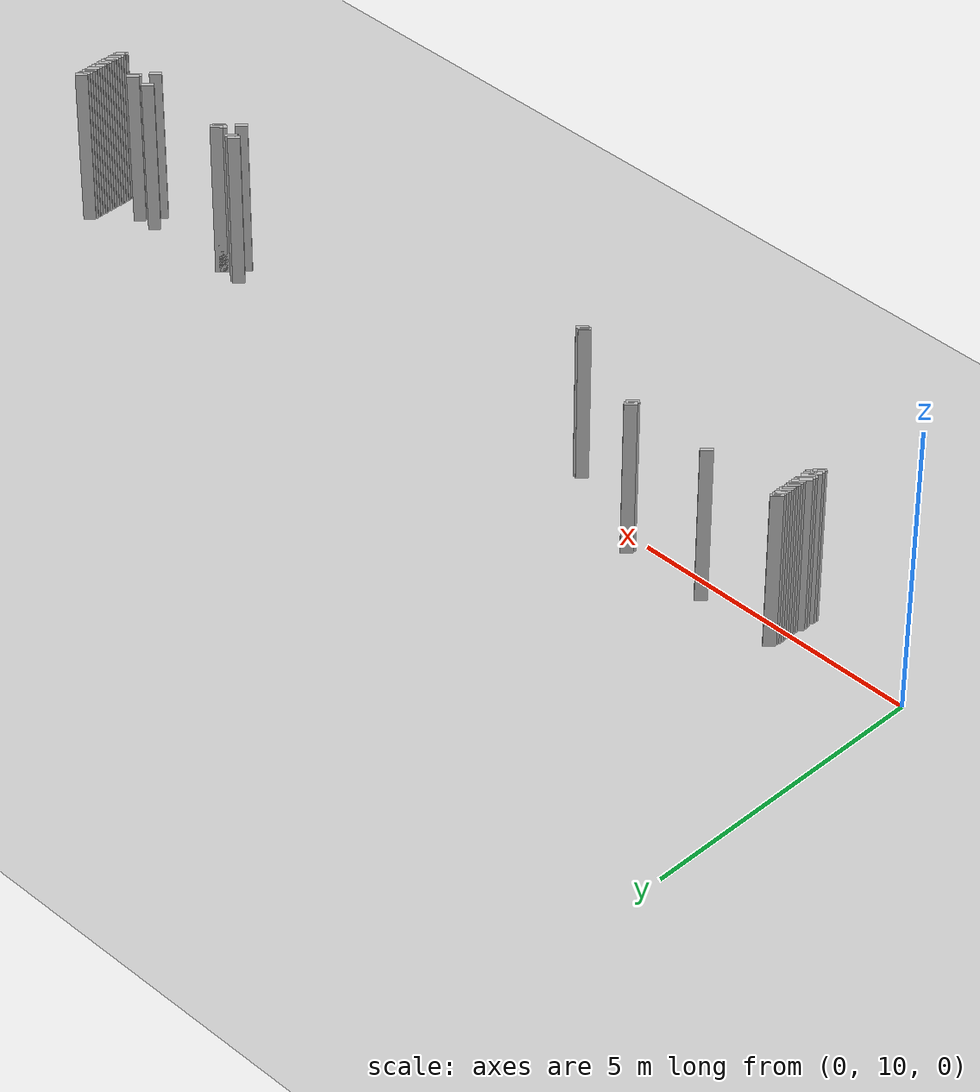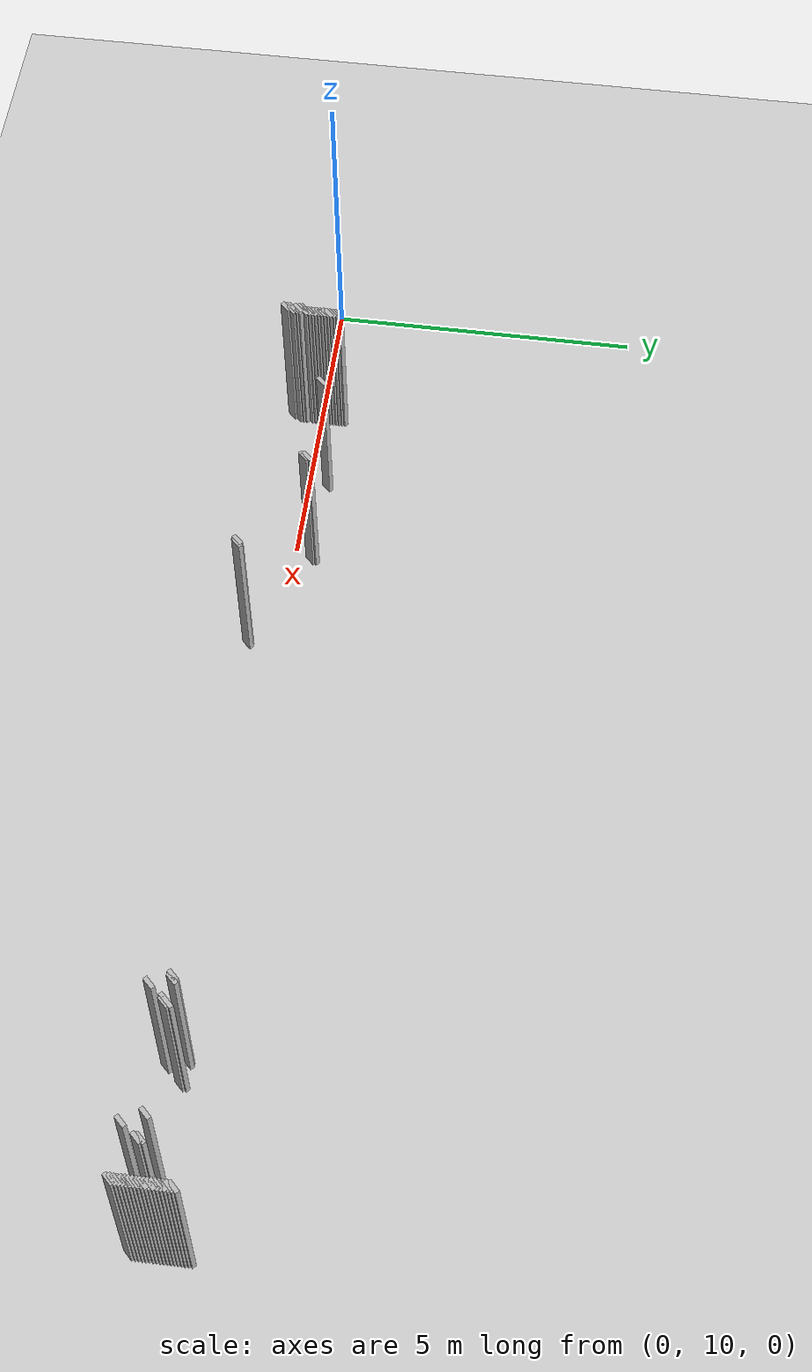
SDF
<sdf version="1.5">
 <world name="default">
  <include><uri>model://ground_plane</uri></include>
  <include><uri>model://sun</uri></include>
  <model name="grey_wall_1638">
   <static>1</static>
   <link name="link">
    <pose>17.05 10.4  1.4 0 0 -0.7853981633974838</pose>
    <collision name="collision">
     <geometry><box><size>0.07071067811865325 .2  2.8</size></box></geometry>
    </collision>
    <visual name="visual">
     <cast_shadows>0</cast_shadows>
     <geometry><box><size>0.07071067811865325 .2  2.8</size></box></geometry>
    </visual>
   </link>
  </model>
  <model name="grey_wall_1639">
   <static>1</static>
   <link name="link">
    <pose>2.25 10.350000000000001  1.4 0 0 -0.7853981633974572</pose>
    <collision name="collision">
     <geometry><box><size>0.07071067811865513 .2  2.8</size></box></geometry>
    </collision>
    <visual name="visual">
     <cast_shadows>0</cast_shadows>
     <geometry><box><size>0.07071067811865513 .2  2.8</size></box></geometry>
    </visual>
   </link>
  </model>
  <model name="grey_wall_1640">
   <static>1</static>
   <link name="link">
    <pose>17.05 10.350000000000001  1.4 0 0 -0.7853981633974838</pose>
    <collision name="collision">
     <geometry><box><size>0.07071067811865325 .2  2.8</size></box></geometry>
    </collision>
    <visual name="visual">
     <cast_shadows>0</cast_shadows>
     <geometry><box><size>0.07071067811865325 .2  2.8</size></box></geometry>
    </visual>
   </link>
  </model>
  <model name="grey_wall_1641">
   <static>1</static>
   <link name="link">
    <pose>2.25 10.3  1.4 0 0 -0.7853981633974572</pose>
    <collision name="collision">
     <geometry><box><size>0.07071067811865513 .2  2.8</size></box></geometry>
    </collision>
    <visual name="visual">
     <cast_shadows>0</cast_shadows>
     <geometry><box><size>0.07071067811865513 .2  2.8</size></box></geometry>
    </visual>
   </link>
  </model>
  <model name="grey_wall_1642">
   <static>1</static>
   <link name="link">
    <pose>3.6500000000000004 10.3  1.4 0 0 -0.7853981633974572</pose>
    <collision name="collision">
     <geometry><box><size>0.07071067811865513 .2  2.8</size></box></geometry>
    </collision>
    <visual name="visual">
     <cast_shadows>0</cast_shadows>
     <geometry><box><size>0.07071067811865513 .2  2.8</size></box></geometry>
    </visual>
   </link>
  </model>
  <model name="grey_wall_1643">
   <static>1</static>
   <link name="link">
    <pose>5.15 10.3  1.4 0 0 -0.7853981633974483</pose>
    <collision name="collision">
     <geometry><box><size>0.07071067811865576 .2  2.8</size></box></geometry>
    </collision>
    <visual name="visual">
     <cast_shadows>0</cast_shadows>
     <geometry><box><size>0.07071067811865576 .2  2.8</size></box></geometry>
    </visual>
   </link>
  </model>
  <model name="grey_wall_1644">
   <static>1</static>
   <link name="link">
    <pose>17.05 10.3  1.4 0 0 -0.7853981633974838</pose>
    <collision name="collision">
     <geometry><box><size>0.07071067811865325 .2  2.8</size></box></geometry>
    </collision>
    <visual name="visual">
     <cast_shadows>0</cast_shadows>
     <geometry><box><size>0.07071067811865325 .2  2.8</size></box></geometry>
    </visual>
   </link>
  </model>
  <model name="grey_wall_1645">
   <static>1</static>
   <link name="link">
    <pose>2.25 10.25  1.4 0 0 -0.7853981633974572</pose>
    <collision name="collision">
     <geometry><box><size>0.07071067811865513 .2  2.8</size></box></geometry>
    </collision>
    <visual name="visual">
     <cast_shadows>0</cast_shadows>
     <geometry><box><size>0.07071067811865513 .2  2.8</size></box></geometry>
    </visual>
   </link>
  </model>
  <model name="grey_wall_1646">
   <static>1</static>
   <link name="link">
    <pose>5.15 10.25  1.4 0 0 -0.7853981633974483</pose>
    <collision name="collision">
     <geometry><box><size>0.07071067811865576 .2  2.8</size></box></geometry>
    </collision>
    <visual name="visual">
     <cast_shadows>0</cast_shadows>
     <geometry><box><size>0.07071067811865576 .2  2.8</size></box></geometry>
    </visual>
   </link>
  </model>
  <model name="grey_wall_1647">
   <static>1</static>
   <link name="link">
    <pose>17.05 10.25  1.4 0 0 -0.7853981633974838</pose>
    <collision name="collision">
     <geometry><box><size>0.07071067811865325 .2  2.8</size></box></geometry>
    </collision>
    <visual name="visual">
     <cast_shadows>0</cast_shadows>
     <geometry><box><size>0.07071067811865325 .2  2.8</size></box></geometry>
    </visual>
   </link>
  </model>
  <model name="grey_wall_1648">
   <static>1</static>
   <link name="link">
    <pose>2.25 10.200000000000001  1.4 0 0 -0.7853981633974572</pose>
    <collision name="collision">
     <geometry><box><size>0.07071067811865513 .2  2.8</size></box></geometry>
    </collision>
    <visual name="visual">
     <cast_shadows>0</cast_shadows>
     <geometry><box><size>0.07071067811865513 .2  2.8</size></box></geometry>
    </visual>
   </link>
  </model>
  <model name="grey_wall_1649">
   <static>1</static>
   <link name="link">
    <pose>17.05 10.200000000000001  1.4 0 0 -0.7853981633974838</pose>
    <collision name="collision">
     <geometry><box><size>0.07071067811865325 .2  2.8</size></box></geometry>
    </collision>
    <visual name="visual">
     <cast_shadows>0</cast_shadows>
     <geometry><box><size>0.07071067811865325 .2  2.8</size></box></geometry>
    </visual>
   </link>
  </model>
  <model name="grey_wall_1650">
   <static>1</static>
   <link name="link">
    <pose>2.25 10.15  1.4 0 0 -0.7853981633974572</pose>
    <collision name="collision">
     <geometry><box><size>0.07071067811865513 .2  2.8</size></box></geometry>
    </collision>
    <visual name="visual">
     <cast_shadows>0</cast_shadows>
     <geometry><box><size>0.07071067811865513 .2  2.8</size></box></geometry>
    </visual>
   </link>
  </model>
  <model name="grey_wall_1651">
   <static>1</static>
   <link name="link">
    <pose>17.05 10.15  1.4 0 0 -0.7853981633974838</pose>
    <collision name="collision">
     <geometry><box><size>0.07071067811865325 .2  2.8</size></box></geometry>
    </collision>
    <visual name="visual">
     <cast_shadows>0</cast_shadows>
     <geometry><box><size>0.07071067811865325 .2  2.8</size></box></geometry>
    </visual>
   </link>
  </model>
  <model name="grey_wall_1652">
   <static>1</static>
   <link name="link">
    <pose>2.25 10.100000000000001  1.4 0 0 -0.7853981633974572</pose>
    <collision name="collision">
     <geometry><box><size>0.07071067811865513 .2  2.8</size></box></geometry>
    </collision>
    <visual name="visual">
     <cast_shadows>0</cast_shadows>
     <geometry><box><size>0.07071067811865513 .2  2.8</size></box></geometry>
    </visual>
   </link>
  </model>
  <model name="grey_wall_1653">
   <static>1</static>
   <link name="link">
    <pose>17.05 10.100000000000001  1.4 0 0 -0.7853981633974838</pose>
    <collision name="collision">
     <geometry><box><size>0.07071067811865325 .2  2.8</size></box></geometry>
    </collision>
    <visual name="visual">
     <cast_shadows>0</cast_shadows>
     <geometry><box><size>0.07071067811865325 .2  2.8</size></box></geometry>
    </visual>
   </link>
  </model>
  <model name="grey_wall_1654">
   <static>1</static>
   <link name="link">
    <pose>2.25 10.05  1.4 0 0 -0.7853981633974572</pose>
    <collision name="collision">
     <geometry><box><size>0.07071067811865513 .2  2.8</size></box></geometry>
    </collision>
    <visual name="visual">
     <cast_shadows>0</cast_shadows>
     <geometry><box><size>0.07071067811865513 .2  2.8</size></box></geometry>
    </visual>
   </link>
  </model>
  <model name="grey_wall_1655">
   <static>1</static>
   <link name="link">
    <pose>17.05 10.05  1.4 0 0 -0.7853981633974838</pose>
    <collision name="collision">
     <geometry><box><size>0.07071067811865325 .2  2.8</size></box></geometry>
    </collision>
    <visual name="visual">
     <cast_shadows>0</cast_shadows>
     <geometry><box><size>0.07071067811865325 .2  2.8</size></box></geometry>
    </visual>
   </link>
  </model>
  <model name="grey_wall_1656">
   <static>1</static>
   <link name="link">
    <pose>2.25 10.0  1.4 0 0 -0.7853981633974572</pose>
    <collision name="collision">
     <geometry><box><size>0.07071067811865513 .2  2.8</size></box></geometry>
    </collision>
    <visual name="visual">
     <cast_shadows>0</cast_shadows>
     <geometry><box><size>0.07071067811865513 .2  2.8</size></box></geometry>
    </visual>
   </link>
  </model>
  <model name="grey_wall_1657">
   <static>1</static>
   <link name="link">
    <pose>17.05 10.0  1.4 0 0 -0.7853981633974838</pose>
    <collision name="collision">
     <geometry><box><size>0.07071067811865325 .2  2.8</size></box></geometry>
    </collision>
    <visual name="visual">
     <cast_shadows>0</cast_shadows>
     <geometry><box><size>0.07071067811865325 .2  2.8</size></box></geometry>
    </visual>
   </link>
  </model>
  <model name="grey_wall_1658">
   <static>1</static>
   <link name="link">
    <pose>2.25 9.950000000000001  1.4 0 0 -0.7853981633974572</pose>
    <collision name="collision">
     <geometry><box><size>0.07071067811865513 .2  2.8</size></box></geometry>
    </collision>
    <visual name="visual">
     <cast_shadows>0</cast_shadows>
     <geometry><box><size>0.07071067811865513 .2  2.8</size></box></geometry>
    </visual>
   </link>
  </model>
  <model name="grey_wall_1659">
   <static>1</static>
   <link name="link">
    <pose>17.05 9.950000000000001  1.4 0 0 -0.7853981633974838</pose>
    <collision name="collision">
     <geometry><box><size>0.07071067811865325 .2  2.8</size></box></geometry>
    </collision>
    <visual name="visual">
     <cast_shadows>0</cast_shadows>
     <geometry><box><size>0.07071067811865325 .2  2.8</size></box></geometry>
    </visual>
   </link>
  </model>
  <model name="grey_wall_1660">
   <static>1</static>
   <link name="link">
    <pose>2.25 9.9  1.4 0 0 -0.7853981633974572</pose>
    <collision name="collision">
     <geometry><box><size>0.07071067811865513 .2  2.8</size></box></geometry>
    </collision>
    <visual name="visual">
     <cast_shadows>0</cast_shadows>
     <geometry><box><size>0.07071067811865513 .2  2.8</size></box></geometry>
    </visual>
   </link>
  </model>
  <model name="grey_wall_1661">
   <static>1</static>
   <link name="link">
    <pose>17.05 9.9  1.4 0 0 -0.7853981633974838</pose>
    <collision name="collision">
     <geometry><box><size>0.07071067811865325 .2  2.8</size></box></geometry>
    </collision>
    <visual name="visual">
     <cast_shadows>0</cast_shadows>
     <geometry><box><size>0.07071067811865325 .2  2.8</size></box></geometry>
    </visual>
   </link>
  </model>
  <model name="grey_wall_1662">
   <static>1</static>
   <link name="link">
    <pose>2.25 9.850000000000001  1.4 0 0 -0.7853981633974572</pose>
    <collision name="collision">
     <geometry><box><size>0.07071067811865513 .2  2.8</size></box></geometry>
    </collision>
    <visual name="visual">
     <cast_shadows>0</cast_shadows>
     <geometry><box><size>0.07071067811865513 .2  2.8</size></box></geometry>
    </visual>
   </link>
  </model>
  <model name="grey_wall_1663">
   <static>1</static>
   <link name="link">
    <pose>14.100000000000001 9.850000000000001  1.4 0 0 -0.7853981633974483</pose>
    <collision name="collision">
     <geometry><box><size>0.07071067811865576 .2  2.8</size></box></geometry>
    </collision>
    <visual name="visual">
     <cast_shadows>0</cast_shadows>
     <geometry><box><size>0.07071067811865576 .2  2.8</size></box></geometry>
    </visual>
   </link>
  </model>
  <model name="grey_wall_1664">
   <static>1</static>
   <link name="link">
    <pose>14.15 9.850000000000001  1.4 0 0 -0.7853981633974483</pose>
    <collision name="collision">
     <geometry><box><size>0.07071067811865576 .2  2.8</size></box></geometry>
    </collision>
    <visual name="visual">
     <cast_shadows>0</cast_shadows>
     <geometry><box><size>0.07071067811865576 .2  2.8</size></box></geometry>
    </visual>
   </link>
  </model>
  <model name="grey_wall_1665">
   <static>1</static>
   <link name="link">
    <pose>14.5 9.850000000000001  1.4 0 0 -0.7853981633974483</pose>
    <collision name="collision">
     <geometry><box><size>0.07071067811865576 .2  2.8</size></box></geometry>
    </collision>
    <visual name="visual">
     <cast_shadows>0</cast_shadows>
     <geometry><box><size>0.07071067811865576 .2  2.8</size></box></geometry>
    </visual>
   </link>
  </model>
  <model name="grey_wall_1666">
   <static>1</static>
   <link name="link">
    <pose>16.1 9.850000000000001  1.4 0 0 -0.7853981633974838</pose>
    <collision name="collision">
     <geometry><box><size>0.07071067811865325 .2  2.8</size></box></geometry>
    </collision>
    <visual name="visual">
     <cast_shadows>0</cast_shadows>
     <geometry><box><size>0.07071067811865325 .2  2.8</size></box></geometry>
    </visual>
   </link>
  </model>
  <model name="grey_wall_1667">
   <static>1</static>
   <link name="link">
    <pose>16.45 9.850000000000001  1.4 0 0 -0.7853981633974838</pose>
    <collision name="collision">
     <geometry><box><size>0.07071067811865325 .2  2.8</size></box></geometry>
    </collision>
    <visual name="visual">
     <cast_shadows>0</cast_shadows>
     <geometry><box><size>0.07071067811865325 .2  2.8</size></box></geometry>
    </visual>
   </link>
  </model>
  <model name="grey_wall_1668">
   <static>1</static>
   <link name="link">
    <pose>17.05 9.850000000000001  1.4 0 0 -0.7853981633974838</pose>
    <collision name="collision">
     <geometry><box><size>0.07071067811865325 .2  2.8</size></box></geometry>
    </collision>
    <visual name="visual">
     <cast_shadows>0</cast_shadows>
     <geometry><box><size>0.07071067811865325 .2  2.8</size></box></geometry>
    </visual>
   </link>
  </model>
  <model name="grey_wall_1669">
   <static>1</static>
   <link name="link">
    <pose>2.2 9.8  1.4 0 0 -0.7853981633974572</pose>
    <collision name="collision">
     <geometry><box><size>0.07071067811865513 .2  2.8</size></box></geometry>
    </collision>
    <visual name="visual">
     <cast_shadows>0</cast_shadows>
     <geometry><box><size>0.07071067811865513 .2  2.8</size></box></geometry>
    </visual>
   </link>
  </model>
  <model name="grey_wall_1670">
   <static>1</static>
   <link name="link">
    <pose>2.25 9.8  1.4 0 0 -0.7853981633974572</pose>
    <collision name="collision">
     <geometry><box><size>0.07071067811865513 .2  2.8</size></box></geometry>
    </collision>
    <visual name="visual">
     <cast_shadows>0</cast_shadows>
     <geometry><box><size>0.07071067811865513 .2  2.8</size></box></geometry>
    </visual>
   </link>
  </model>
  <model name="grey_wall_1671">
   <static>1</static>
   <link name="link">
    <pose>14.450000000000001 9.8  1.4 0 0 -0.7853981633974483</pose>
    <collision name="collision">
     <geometry><box><size>0.07071067811865576 .2  2.8</size></box></geometry>
    </collision>
    <visual name="visual">
     <cast_shadows>0</cast_shadows>
     <geometry><box><size>0.07071067811865576 .2  2.8</size></box></geometry>
    </visual>
   </link>
  </model>
  <model name="grey_wall_1672">
   <static>1</static>
   <link name="link">
    <pose>14.5 9.8  1.4 0 0 -0.7853981633974483</pose>
    <collision name="collision">
     <geometry><box><size>0.07071067811865576 .2  2.8</size></box></geometry>
    </collision>
    <visual name="visual">
     <cast_shadows>0</cast_shadows>
     <geometry><box><size>0.07071067811865576 .2  2.8</size></box></geometry>
    </visual>
   </link>
  </model>
  <model name="grey_wall_1673">
   <static>1</static>
   <link name="link">
    <pose>16.45 9.8  1.4 0 0 -0.7853981633974838</pose>
    <collision name="collision">
     <geometry><box><size>0.07071067811865325 .2  2.8</size></box></geometry>
    </collision>
    <visual name="visual">
     <cast_shadows>0</cast_shadows>
     <geometry><box><size>0.07071067811865325 .2  2.8</size></box></geometry>
    </visual>
   </link>
  </model>
  <model name="grey_wall_1674">
   <static>1</static>
   <link name="link">
    <pose>17.05 9.8  1.4 0 0 -0.7853981633974838</pose>
    <collision name="collision">
     <geometry><box><size>0.07071067811865325 .2  2.8</size></box></geometry>
    </collision>
    <visual name="visual">
     <cast_shadows>0</cast_shadows>
     <geometry><box><size>0.07071067811865325 .2  2.8</size></box></geometry>
    </visual>
   </link>
  </model>
  <model name="grey_wall_1675">
   <static>1</static>
   <link name="link">
    <pose>2.2 9.75  1.4 0 0 -0.7853981633974572</pose>
    <collision name="collision">
     <geometry><box><size>0.07071067811865513 .2  2.8</size></box></geometry>
    </collision>
    <visual name="visual">
     <cast_shadows>0</cast_shadows>
     <geometry><box><size>0.07071067811865513 .2  2.8</size></box></geometry>
    </visual>
   </link>
  </model>
  <model name="grey_wall_1676">
   <static>1</static>
   <link name="link">
    <pose>17.05 9.75  1.4 0 0 -0.7853981633974838</pose>
    <collision name="collision">
     <geometry><box><size>0.07071067811865325 .2  2.8</size></box></geometry>
    </collision>
    <visual name="visual">
     <cast_shadows>0</cast_shadows>
     <geometry><box><size>0.07071067811865325 .2  2.8</size></box></geometry>
    </visual>
   </link>
  </model>
  <model name="grey_wall_1677">
   <static>1</static>
   <link name="link">
    <pose>2.2 9.700000000000001  1.4 0 0 -0.7853981633974572</pose>
    <collision name="collision">
     <geometry><box><size>0.07071067811865513 .2  2.8</size></box></geometry>
    </collision>
    <visual name="visual">
     <cast_shadows>0</cast_shadows>
     <geometry><box><size>0.07071067811865513 .2  2.8</size></box></geometry>
    </visual>
   </link>
  </model>
  <model name="grey_wall_1678">
   <static>1</static>
   <link name="link">
    <pose>2.25 9.700000000000001  1.4 0 0 -0.7853981633974572</pose>
    <collision name="collision">
     <geometry><box><size>0.07071067811865513 .2  2.8</size></box></geometry>
    </collision>
    <visual name="visual">
     <cast_shadows>0</cast_shadows>
     <geometry><box><size>0.07071067811865513 .2  2.8</size></box></geometry>
    </visual>
   </link>
  </model>
  <model name="grey_wall_1679">
   <static>1</static>
   <link name="link">
    <pose>17.05 9.700000000000001  1.4 0 0 -0.7853981633974838</pose>
    <collision name="collision">
     <geometry><box><size>0.07071067811865325 .2  2.8</size></box></geometry>
    </collision>
    <visual name="visual">
     <cast_shadows>0</cast_shadows>
     <geometry><box><size>0.07071067811865325 .2  2.8</size></box></geometry>
    </visual>
   </link>
  </model>
  <model name="grey_wall_1680">
   <static>1</static>
   <link name="link">
    <pose>2.25 9.65  1.4 0 0 -0.7853981633974572</pose>
    <collision name="collision">
     <geometry><box><size>0.07071067811865513 .2  2.8</size></box></geometry>
    </collision>
    <visual name="visual">
     <cast_shadows>0</cast_shadows>
     <geometry><box><size>0.07071067811865513 .2  2.8</size></box></geometry>
    </visual>
   </link>
  </model>
  <model name="grey_wall_1681">
   <static>1</static>
   <link name="link">
    <pose>17.05 9.65  1.4 0 0 -0.7853981633974838</pose>
    <collision name="collision">
     <geometry><box><size>0.07071067811865325 .2  2.8</size></box></geometry>
    </collision>
    <visual name="visual">
     <cast_shadows>0</cast_shadows>
     <geometry><box><size>0.07071067811865325 .2  2.8</size></box></geometry>
    </visual>
   </link>
  </model>
  <model name="grey_wall_1682">
   <static>1</static>
   <link name="link">
    <pose>2.2 9.600000000000001  1.4 0 0 -0.7853981633974572</pose>
    <collision name="collision">
     <geometry><box><size>0.07071067811865513 .2  2.8</size></box></geometry>
    </collision>
    <visual name="visual">
     <cast_shadows>0</cast_shadows>
     <geometry><box><size>0.07071067811865513 .2  2.8</size></box></geometry>
    </visual>
   </link>
  </model>
  <model name="grey_wall_1683">
   <static>1</static>
   <link name="link">
    <pose>2.25 9.600000000000001  1.4 0 0 -0.7853981633974572</pose>
    <collision name="collision">
     <geometry><box><size>0.07071067811865513 .2  2.8</size></box></geometry>
    </collision>
    <visual name="visual">
     <cast_shadows>0</cast_shadows>
     <geometry><box><size>0.07071067811865513 .2  2.8</size></box></geometry>
    </visual>
   </link>
  </model>
  <model name="grey_wall_1684">
   <static>1</static>
   <link name="link">
    <pose>17.05 9.600000000000001  1.4 0 0 -0.7853981633974838</pose>
    <collision name="collision">
     <geometry><box><size>0.07071067811865325 .2  2.8</size></box></geometry>
    </collision>
    <visual name="visual">
     <cast_shadows>0</cast_shadows>
     <geometry><box><size>0.07071067811865325 .2  2.8</size></box></geometry>
    </visual>
   </link>
  </model>
  <model name="grey_wall_1685">
   <static>1</static>
   <link name="link">
    <pose>2.2 9.55  1.4 0 0 -0.7853981633974572</pose>
    <collision name="collision">
     <geometry><box><size>0.07071067811865513 .2  2.8</size></box></geometry>
    </collision>
    <visual name="visual">
     <cast_shadows>0</cast_shadows>
     <geometry><box><size>0.07071067811865513 .2  2.8</size></box></geometry>
    </visual>
   </link>
  </model>
  <model name="grey_wall_1686">
   <static>1</static>
   <link name="link">
    <pose>14.25 9.55  1.4 0 0 -0.7853981633974483</pose>
    <collision name="collision">
     <geometry><box><size>0.07071067811865576 .2  2.8</size></box></geometry>
    </collision>
    <visual name="visual">
     <cast_shadows>0</cast_shadows>
     <geometry><box><size>0.07071067811865576 .2  2.8</size></box></geometry>
    </visual>
   </link>
  </model>
  <model name="grey_wall_1687">
   <static>1</static>
   <link name="link">
    <pose>16.25 9.55  1.4 0 0 -0.7853981633974838</pose>
    <collision name="collision">
     <geometry><box><size>0.07071067811865325 .2  2.8</size></box></geometry>
    </collision>
    <visual name="visual">
     <cast_shadows>0</cast_shadows>
     <geometry><box><size>0.07071067811865325 .2  2.8</size></box></geometry>
    </visual>
   </link>
  </model>
  <model name="grey_wall_1688">
   <static>1</static>
   <link name="link">
    <pose>17.05 9.55  1.4 0 0 -0.7853981633974838</pose>
    <collision name="collision">
     <geometry><box><size>0.07071067811865325 .2  2.8</size></box></geometry>
    </collision>
    <visual name="visual">
     <cast_shadows>0</cast_shadows>
     <geometry><box><size>0.07071067811865325 .2  2.8</size></box></geometry>
    </visual>
   </link>
  </model>
  <model name="grey_wall_1689">
   <static>1</static>
   <link name="link">
    <pose>2.2 9.5  1.4 0 0 -0.7853981633974572</pose>
    <collision name="collision">
     <geometry><box><size>0.07071067811865513 .2  2.8</size></box></geometry>
    </collision>
    <visual name="visual">
     <cast_shadows>0</cast_shadows>
     <geometry><box><size>0.07071067811865513 .2  2.8</size></box></geometry>
    </visual>
   </link>
  </model>
  <model name="grey_wall_1690">
   <static>1</static>
   <link name="link">
    <pose>6.8500000000000005 9.5  1.4 0 0 -0.7853981633974483</pose>
    <collision name="collision">
     <geometry><box><size>0.07071067811865576 .2  2.8</size></box></geometry>
    </collision>
    <visual name="visual">
     <cast_shadows>0</cast_shadows>
     <geometry><box><size>0.07071067811865576 .2  2.8</size></box></geometry>
    </visual>
   </link>
  </model>
  <model name="grey_wall_1691">
   <static>1</static>
   <link name="link">
    <pose>6.9 9.5  1.4 0 0 -0.7853981633974483</pose>
    <collision name="collision">
     <geometry><box><size>0.07071067811865576 .2  2.8</size></box></geometry>
    </collision>
    <visual name="visual">
     <cast_shadows>0</cast_shadows>
     <geometry><box><size>0.07071067811865576 .2  2.8</size></box></geometry>
    </visual>
   </link>
  </model>
 </world>
</sdf>
